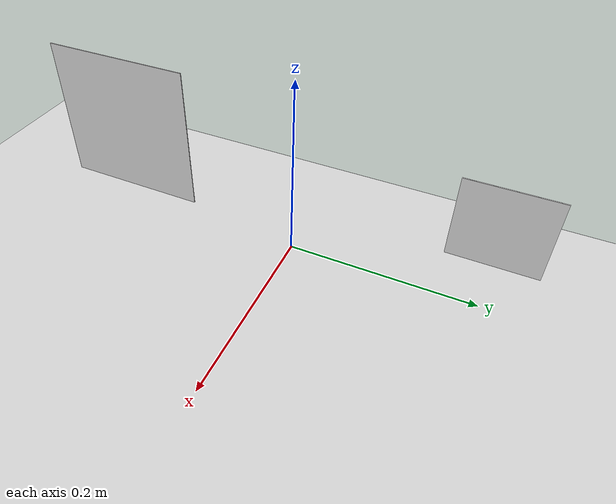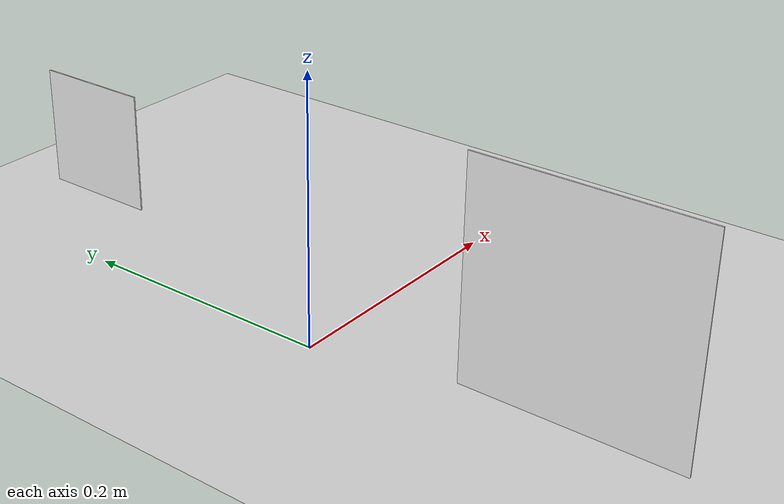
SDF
<sdf version="1.7">
 <world name="default">
  <light name="sun" type="directional">
   <pose>0 0 10 0 -0 0</pose>
   <diffuse>0.8 0.8 0.8 1</diffuse>
   <specular>0.2 0.2 0.2 1</specular>
   <attenuation>
    <range>1000</range>
    <constant>0.9</constant>
    <linear>0.01</linear>
    <quadratic>0.001</quadratic>
   </attenuation>
   <direction>-0.5 0.1 -0.9</direction>
   <spot><inner_angle>0</inner_angle><outer_angle>0</outer_angle><falloff>0</falloff></spot>
  </light>
  <model name="ground_plane">
   <static>1</static>
   <link name="link">
    <collision name="collision">
     <geometry><plane><normal>0 0 1</normal><size>100 100</size></plane></geometry>
     <surface>
      <contact><collide_bitmask>65535</collide_bitmask></contact>
      <friction><ode><mu>100</mu><mu2>50</mu2></ode></friction>
     </surface>
    </collision>
    <visual name="visual">
     <cast_shadows>0</cast_shadows>
     <geometry><plane><normal>0 0 1</normal><size>100 100</size></plane></geometry>
     <material>
      <script><uri>file://media/materials/scripts/gazebo.material</uri><name>Gazebo/Grey</name></script>
     </material>
    </visual>
   </link>
  </model>
  <gravity>0 0 -9.8</gravity>
  <magnetic_field>6e-06 2.3e-05 -4.2e-05</magnetic_field>
  <atmosphere type="adiabatic"/>
  <physics type="ode">
   <max_step_size>0.001</max_step_size>
   <real_time_factor>1</real_time_factor>
   <real_time_update_rate>1000</real_time_update_rate>
  </physics>
  <scene><ambient>0.4 0.4 0.4 1</ambient><background>0.7 0.7 0.7 1</background><shadows>1</shadows></scene>
  <spherical_coordinates>
   <surface_model>EARTH_WGS84</surface_model>
   <latitude_deg>0</latitude_deg>
   <longitude_deg>0</longitude_deg>
   <elevation>0</elevation>
   <heading_deg>0</heading_deg>
  </spherical_coordinates>
  <model name="NewApriltag1">
   <link name="main">
    <inertial>
     <mass>1</mass>
     <inertia><ixx>1</ixx><ixy>0</ixy><ixz>0</ixz><iyy>1</iyy><iyz>0</iyz><izz>1</izz></inertia>
    </inertial>
    <visual name="main_Visual">
     <geometry><box><size>0.087 0.087 0.001</size></box></geometry>
     <material>
      <script>
       <uri>model://Apriltag36_11_00001/materials/scripts</uri>
       <uri>model://Apriltag36_11_00001/materials/textures</uri>
       <name>Apriltag36_11_00001</name>
      </script>
      <shader type="pixel"><normal_map>__default__</normal_map></shader>
      <ambient>1 1 1 1</ambient>
      <diffuse>1 1 1 1</diffuse>
      <specular>0 0 0 1</specular>
      <emissive>0 0 0 1</emissive>
     </material>
    </visual>
   </link>
   <static>1</static>
   <pose>0 0.2 0.1 -1e-06 -1.57079 0</pose>
  </model>
  <model name="Apriltag5">
   <link name="main">
    <inertial>
     <mass>1</mass>
     <inertia><ixx>1</ixx><ixy>0</ixy><ixz>0</ixz><iyy>1</iyy><iyz>0</iyz><izz>1</izz></inertia>
    </inertial>
    <visual name="main_Visual">
     <geometry><box><size>0.1595 0.1595 0.001</size></box></geometry>
     <material>
      <script>
       <uri>model://Apriltag36_11_00005/materials/scripts</uri>
       <uri>model://Apriltag36_11_00005/materials/textures</uri>
       <name>Apriltag36_11_00005</name>
      </script>
      <shader type="pixel"><normal_map>__default__</normal_map></shader>
      <ambient>1 1 1 1</ambient>
      <diffuse>1 1 1 1</diffuse>
      <specular>0 0 0 1</specular>
      <emissive>0 0 0 1</emissive>
     </material>
    </visual>
   </link>
   <static>1</static>
   <pose>0 -0.2 0.1 -1e-06 -1.57079 0</pose>
  </model>
 </world>
</sdf>
